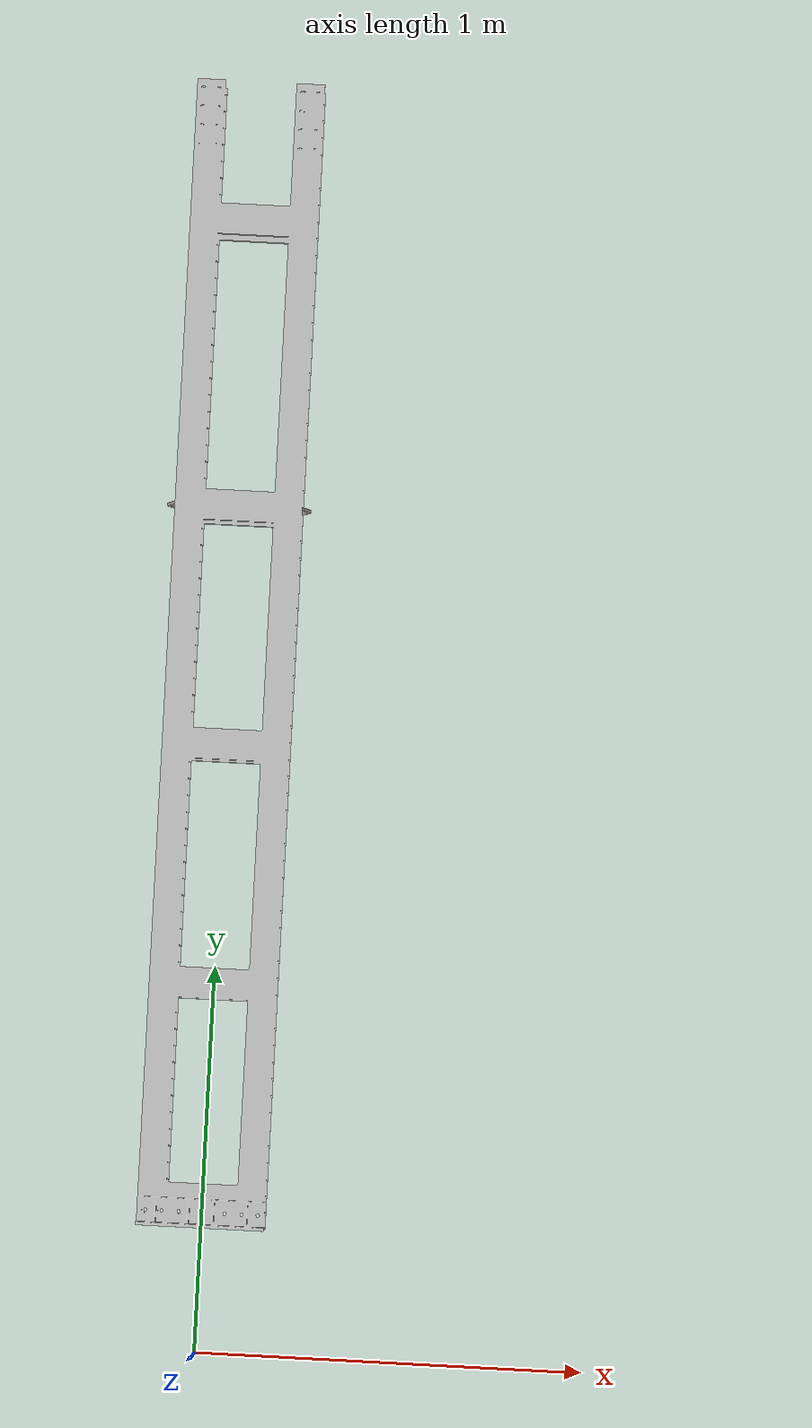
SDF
<?xml version='1.0'?>
<sdf version='1.4'>
  <model name="FGAG1003_VIGA_1">
 <static>false</static>
 <link name="mesh_link">
   <pose>0 0 -9.85 0 0 0</pose>
	<inertial>
            <mass>100.0</mass>
 	</inertial>
        <visual name="visual">
        <geometry>
            <mesh><uri>model://FGAG1003_VIGA_1/meshes/FGAG1003_VIGA_1.stl</uri></mesh>
          </geometry>
        </visual>
        <collision name="collision">
          <geometry>
            <mesh><uri>model://FGAG1003_VIGA_1/meshes/FGAG1003_VIGA_1.stl</uri></mesh>
          </geometry>
        </collision>
      </link>
      <joint name='anchor' type='fixed'>
        <child>mesh_link</child>
        <parent>world</parent>
      </joint>
  </model>
</sdf>
